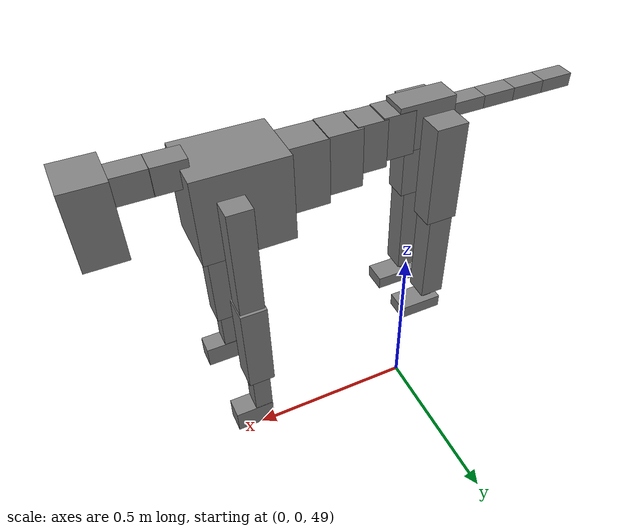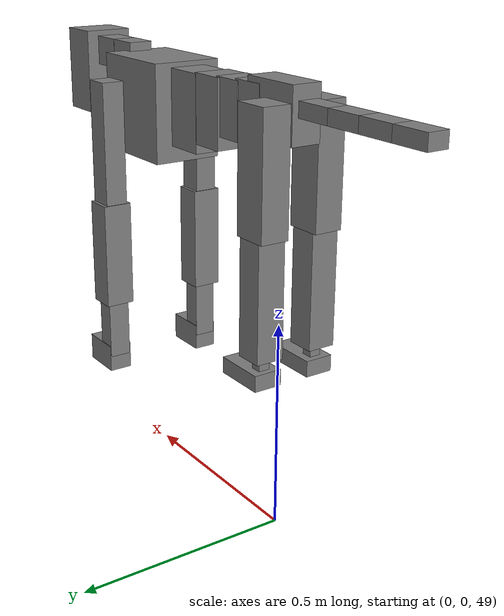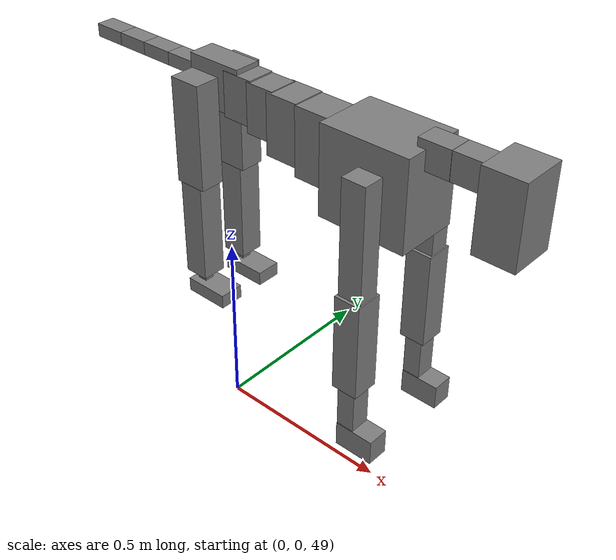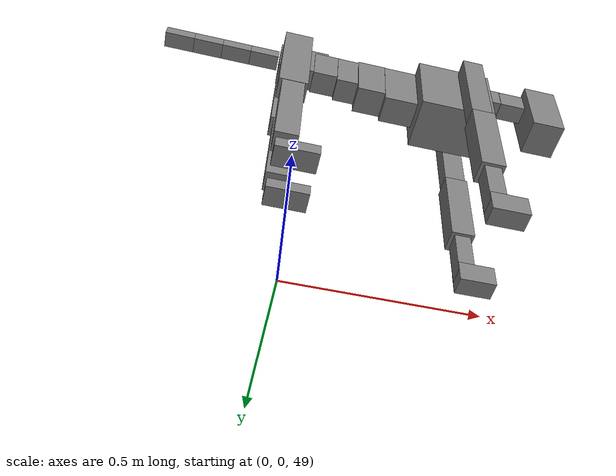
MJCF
<mujoco model="dog">

    <default>
        <joint armature="0.02" stiffness="1" damping="0.2" limited="true"/>
        <geom condim="3" friction="1 0.05 0.05" margin="0.01"/>
        <motor ctrllimited="true" ctrlrange="-1.0 1.0" forcelimited="true" gear="50"/>
    </default>

    <compiler inertiafromgeom="true" angle="radian"/>

    <option timestep="0.016" iterations="50" tolerance="1e-10" solver="Newton" jacobian="dense" cone="pyramidal"/>

    <size nconmax="20000" njmax="60000" nstack="5000000"/>
    <visual>
        <map force="0.1" zfar="30"/>
        <rgba haze="0.15 0.25 0.35 1"/>
        <quality shadowsize="2048"/>
        <global offwidth="800" offheight="800"/>
    </visual>

    <asset>
        <texture type="skybox" builtin="gradient" rgb1="0.3 0.5 0.7" rgb2="0 0 0" width="512" height="512"/>
        <texture name="texplane" type="2d" builtin="checker" rgb1=".2 .3 .4" rgb2=".1 0.15 0.2" width="512" height="512"
                 mark="cross" markrgb=".8 .8 .8"/>
        <texture name="texgeom" type="cube" builtin="flat" mark="cross" width="127" height="1278" rgb1="0.8 0.6 0.4"
                 rgb2="0.8 0.6 0.4" markrgb="1 1 1" random="0.01"/>

        <material name="matplane" reflectance="0.3" texture="texplane" texrepeat="1 1" texuniform="true"/>
        <material name="matgeom" texture="texgeom" texuniform="true" rgba="0.8 0.6 .4 1"/>
    </asset>

    <worldbody>
        <geom name="floor" pos="0 0 0" size="0 0 .25" type="plane" material="matplane" condim="3"/>

        <light directional="false" diffuse=".2 .2 .2" specular="0 0 0" pos="0 0 5" dir="0 0 -1" castshadow="false"/>
        <light mode="targetbodycom" target="torso" directional="false" diffuse=".8 .8 .8" specular="0.3 0.3 0.3"
               pos="0 0 4.0" dir="0 0 -1"/>

        <body name="root" pos="0 0 50">
            <freejoint name="root_1"/>
            <geom type="box" pos="0 0 -0.02" size="0.0774  0.0358  0.063" density="2030"/>

            <body name="spine1" pos="0.054 0 0">
                <joint name="spine1_y" axis="0 1 0" range="0 0.7" limited="true"/>
                <geom type="box" pos="0.02375 0 -0.03" size="0.04375  0.0375  0.05985" density="2030"/>

                <body name="spine2" pos="0.0612 0 0">
                    <joint name="spine2_y" axis="0 1 0" range="-0.15 0.15" limited="true"/>
                    <geom type="box" pos="0.03555  0  -0.04" size="0.04055  0.039  0.06615" density="2030"/>

                    <body name="spine3" pos="0.0730 0 0">
                        <joint name="spine3_y" axis="0 1 0" range="-0.15 0.15" limited="true"/>
                        <geom type="box" pos="0.03555  0  -0.057" size="0.04555  0.0445  0.081" density="2030"/>

                        <body name="spine4" pos="0.0780 0 0">
                            <joint name="spine4_y" axis="0 1 0" range="-0.15 0.15" limited="true"/>
                            <geom type="box" pos="0.05265  0  -0.07" size="0.05265  0.045  0.09135" density="2030"/>

                            <body name="torso" pos="0.1082 0 0">
                                <joint name="torso_y" axis="0 1 0" range="-0.15 0.15" limited="true"/>
                                <geom type="box" pos="0.11925  0  -0.085" size="0.11925  0.085  0.11745"
                                      density="2030"/>

                                <body name="neck1" pos="0.2160  0   0.0180">
                                    <joint name="neck1_y" axis="0 1 0" range="-1.2  -1" limited="true"/>
                                    <geom type="box" pos="0.0423  0  0" size="0.0423  0.03  0.036" density="2325"/>

                                    <body name="neck2" pos="0.0853  0  0">
                                        <joint name="neck2_y" axis="0 1 0" range="0.1  0" limited="true"/>
                                        <geom type="box" pos="0.0423  0  0" size="0.0423  0.03  0.036" density="2325"/>

                                        <body name="head" pos="0.0853  0  0">
                                            <joint name="head_y" axis="0 1 0" range="-0.3  -0.2" limited="true"/>
                                            <geom type="box" pos="0.0531  0  -0.055" size="0.0531  0.06  0.1044"
                                                  density="4030"/>

                                        </body>
                                    </body>
                                </body>

                                <body name="front_shoulder" pos="0.156  0   -0.0480">
                                    <joint name="front_shoulder_y" axis="0 1 0" range="-1 1.5" limited="true"/>
                                    <geom type="box" pos="0 0.13 -0.1370" size="0.0322  0.0275  0.1637" density="1158"/>
                                    <geom type="box" pos="0 -0.13 -0.1370" size="0.0322  0.0275  0.1637"
                                          density="1158"/>

                                    <body name="front_elbow" pos="0  0  -0.2740">
                                        <joint name="front_elbow_y" axis="0 1 0" range="-2 0" limited="true"/>
                                        <geom type="box" pos="0 0.13 -0.1305" size="0.0351  0.0358  0.1305"
                                              density="1081"/>
                                        <geom type="box" pos="0 -0.13 -0.1305" size="0.0351  0.0358  0.1305"
                                              density="1081"/>

                                        <body name="front_wrist" pos="0  0  -0.2610">
                                            <joint name="front_wrist_y" axis="0 1 0" range="-0.2 0" limited="true"/>
                                            <geom type="box" pos="0 0.13 -0.0656" size="0.0242  0.0269  0.0788"
                                                  density="1664"/>
                                            <geom type="box" pos="0 -0.13 -0.0656" size="0.0242  0.0269  0.0788"
                                                  density="1664"/>

                                            <body name="front_finger_end" pos="0  0  -0.1313">
                                                <joint name="front_finger_y" axis="0 1 0" range="-0.4 1"
                                                       limited="true"/>
                                                <geom type="box" pos="0.0287  0.13  -0.0184"
                                                      size="0.0527  0.0287  0.0334" density="1515"/>
                                                <geom type="box" pos="0.0287  -0.13  -0.0184"
                                                      size="0.0527  0.0287  0.0334" density="1515"/>

                                            </body>

                                        </body>
                                    </body>
                                </body>

                            </body>
                        </body>
                    </body>
                </body>
            </body>

            <body name="back_hip" pos="-0.03 0 -0.018">
                <joint name="back_hip_y" axis="0 1 0" range="-1.5 0.3" limited="true"/>
                <geom type="box" pos="0 0.07 -0.1188" size="0.0435  0.0341  0.1416" density="1154"/>
                <geom type="box" pos="0 -0.07 -0.1188" size="0.0435  0.0341  0.1416" density="1154"/>

                <body name="back_knee" pos="0  0  -0.2375">
                    <joint name="back_knee_y" axis="0 1 0" range="0 2.8" limited="true"/>
                    <geom type="box" pos="0 0.07 -0.1388" size="0.0337  0.0333  0.1543" density="1227"/>
                    <geom type="box" pos="0 -0.07 -0.1388" size="0.0337  0.0333  0.1543" density="1227"/>

                    <body name="back_ankle" pos="0  0  -0.2776">
                        <joint name="back_ankle_y" axis="0 1 0" range="-2.2 0" limited="true"/>
                        <geom type="box" pos="0 0.07 -0.0284" size="0.0133  0.0133  0.0396" density="1284"/>
                        <geom type="box" pos="0 -0.07 -0.0284" size="0.0133  0.0133  0.0396" density="1284"/>

                        <body name="back_toe_end" pos="0  0  -0.0568">
                            <joint name="back_toe_y" axis="0 1 0" range="-0.4 1" limited="true"/>
                            <geom type="box" pos="0.0338  0.07  -0.0040" size="0.0620  0.0338  0.0190" density="1515"/>
                            <geom type="box" pos="0.0338  -0.07  -0.0040" size="0.0620  0.0338  0.0190" density="1515"/>

                        </body>
                    </body>
                </body>
            </body>

            <body name="tail1" pos="-0.074 0 -0.006">
                <joint name="tail1_y" axis="0 1 0" range="-0.2 0.2" limited="true"/>
                <geom type="box" pos="-0.0536  0  0" size="0.045  0.025  0.0175" density="1587"/>

                <body name="tail2" pos="-0.09 0 0">
                    <joint name="tail2_y" axis="0 1 0" range="-0.2 0.2" limited="true"/>
                    <geom type="box" pos="-0.0536  0  0" size="0.045  0.025  0.0175" density="1587"/>

                    <body name="tail3" pos="-0.09 0 0">
                        <joint name="tail3_y" axis="0 1 0" range="-0.2 0.2" limited="true"/>
                        <geom type="box" pos="-0.0536  0  0" size="0.045  0.025  0.0175" density="1587"/>

                        <body name="tail4" pos="-0.09 0 0">
                            <joint name="tail4_y" axis="0 1 0" range="-0.2 0.2" limited="true"/>
                            <geom type="box" pos="-0.0536  0  0" size="0.045  0.025  0.0175" density="1587"/>

                        </body>
                    </body>
                </body>
            </body>
        </body>
    </worldbody>

    <actuator>
        <motor joint="spine1_y" forcerange="-150 150     "/>
        <motor joint="spine2_y" forcerange="-150 150     "/>
        <motor joint="spine3_y" forcerange="-150 150     "/>
        <motor joint="spine4_y" forcerange="-150 150     "/>
        <motor joint="torso_y" forcerange="-150 150     "/>
        <motor joint="neck1_y" forcerange="-100 100       "/>
        <motor joint="neck2_y" forcerange="-100 100       "/>
        <motor joint="head_y" forcerange="-150 150       "/>
        <motor joint="front_shoulder_y" forcerange="-144.14 139.32"/>
        <motor joint="front_elbow_y" forcerange="-190.30 170.35"/>
        <motor joint="front_wrist_y" forcerange="-69.93 145.41"/>
        <motor joint="front_finger_y" forcerange="-20.88 92.29"/>
        <motor joint="back_hip_y" forcerange="-351.62 303.59"/>
        <motor joint="back_knee_y" forcerange="-334.43 349.25"/>
        <motor joint="back_angle_y" forcerange="-55.13 57.30"/>
        <motor joint="back_toe_y" forcerange="-106.06 84.43"/>
        <motor joint="tail1_y" forcerange="-50 50     "/>
        <motor joint="tail2_y" forcerange="-50 50     "/>
        <motor joint="tail3_y" forcerange="-50 50     "/>
        <motor joint="tail4_y" forcerange="-50 50     "/>
    </actuator>
</mujoco>
